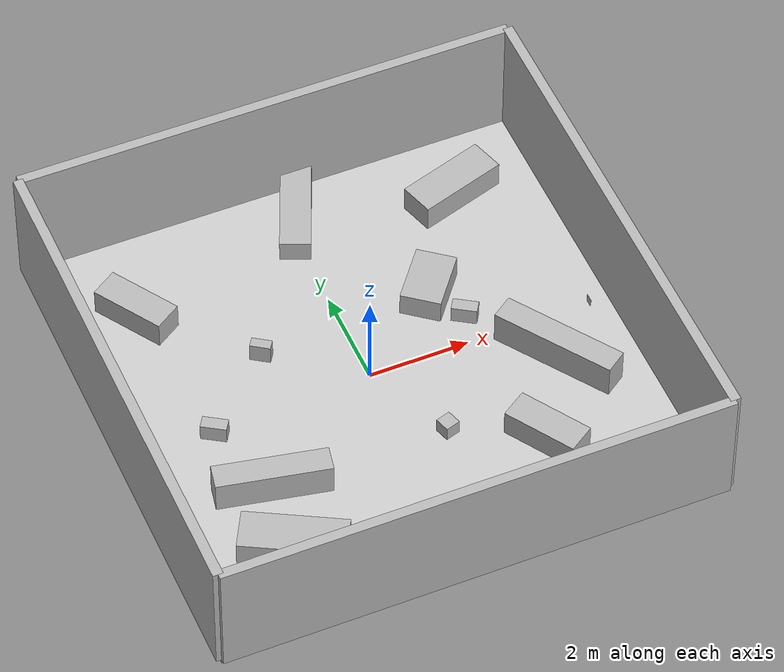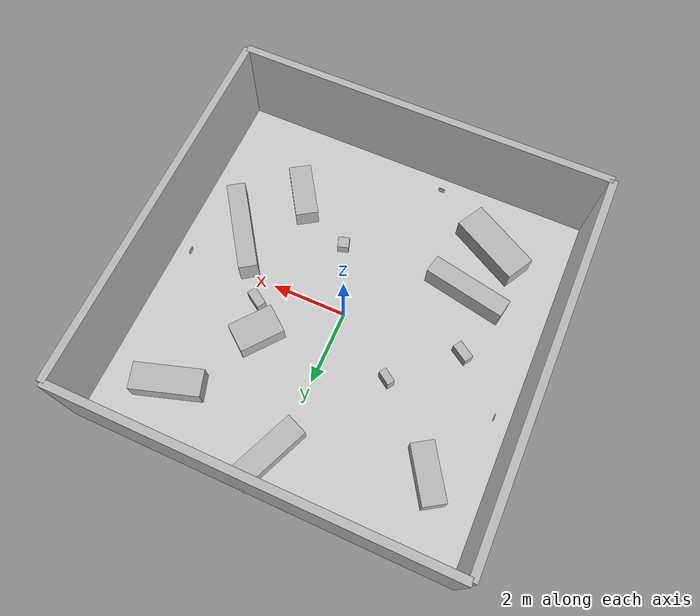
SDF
<sdf version='1.10'>
  <world name='small_office'>

    <physics name='physics' type='ignored'>
      <max_step_size>0.008</max_step_size>
      <real_time_factor>1</real_time_factor>
      <real_time_update_rate>200</real_time_update_rate>
    </physics>

    <plugin name='gz::sim::systems::Physics' filename='gz-sim-physics-system'/>
    <plugin name='gz::sim::systems::UserCommands' filename='gz-sim-user-commands-system'/>
    <plugin name='gz::sim::systems::SceneBroadcaster' filename='gz-sim-scene-broadcaster-system'/>

    <plugin name='gz::sim::systems::Sensors' filename='gz-sim-sensors-system'>
      <render_engine>ogre2</render_engine>
    </plugin>

    <plugin name='gz::sim::systems::Contact' filename='gz-sim-contact-system'/>
    <plugin name='gz::sim::systems::Imu' filename='gz-sim-imu-system'/>

    <gravity>0 0 -9.8</gravity>

    <scene>
      <ambient>0.4 0.4 0.4 1</ambient>
      <background>0.7 0.7 0.7 1</background>
      <shadows>true</shadows>
    </scene>

    <!-- FLOOR -->

    <model name='floor'>
      <static>true</static>

      <link name='link'>

        <collision name='collision'>
          <geometry>
            <box>
              <size>10 10 0.1</size>
            </box>
          </geometry>
        </collision>

        <visual name='visual'>
          <geometry>
            <box>
              <size>10 10 0.1</size>
            </box>
          </geometry>

          <material>
            <ambient>0.7 0.7 0.7 1</ambient>
            <diffuse>0.8 0.8 0.8 1</diffuse>
          </material>
        </visual>

      </link>

      <pose>0 0 -0.05 0 0 0</pose>
    </model>

    <!-- WALLS -->

    <model name='north_wall'>
      <static>true</static>

      <link name='link'>

        <collision name='collision'>
          <geometry>
            <box>
              <size>10 0.2 2.5</size>
            </box>
          </geometry>
        </collision>

        <visual name='visual'>
          <geometry>
            <box>
              <size>10 0.2 2.5</size>
            </box>
          </geometry>
        </visual>

      </link>

      <pose>0 5 1.25 0 0 0</pose>
    </model>

    <model name='south_wall'>
      <static>true</static>

      <link name='link'>

        <collision name='collision'>
          <geometry>
            <box>
              <size>10 0.2 2.5</size>
            </box>
          </geometry>
        </collision>

        <visual name='visual'>
          <geometry>
            <box>
              <size>10 0.2 2.5</size>
            </box>
          </geometry>
        </visual>

      </link>

      <pose>0 -5 1.25 0 0 0</pose>
    </model>

    <model name='east_wall'>
      <static>true</static>

      <link name='link'>

        <collision name='collision'>
          <geometry>
            <box>
              <size>0.2 10 2.5</size>
            </box>
          </geometry>
        </collision>

        <visual name='visual'>
          <geometry>
            <box>
              <size>0.2 10 2.5</size>
            </box>
          </geometry>
        </visual>

      </link>

      <pose>5 0 1.25 0 0 0</pose>
    </model>

    <model name='west_wall'>
      <static>true</static>

      <link name='link'>

        <collision name='collision'>
          <geometry>
            <box>
              <size>0.2 10 2.5</size>
            </box>
          </geometry>
        </collision>

        <visual name='visual'>
          <geometry>
            <box>
              <size>0.2 10 2.5</size>
            </box>
          </geometry>
        </visual>

      </link>

      <pose>-5 0 1.25 0 0 0</pose>
    </model>

    <!-- APRIL TAG -->

    <model name='charge_dock'>
      <pose>-4.5 1.0 0.08 -1.57 0 -1.57</pose>

      <include>
        <uri>model://Apriltag36_11_00000</uri>
      </include>
    </model>

    <model name='check_dock'>
      <pose>4.5 0.0 0.08 -1.57 0 1.57</pose>

      <include>
        <uri>model://Apriltag36_11_00001</uri>
      </include>
    </model>

    <model name='load_dock'>
      <pose>-1.0 -4.5 0.08 -1.57 0 0.0</pose>

      <include>
        <uri>model://Apriltag36_11_00002</uri>
      </include>
    </model>

    <!-- MAIN BOXES -->

    <model name='box'>
      <static>true</static>

      <pose>3.2 3.5 0.275 0 0 0.3</pose>

      <link name='box_link'>

        <collision name='collision'>
          <geometry>
            <box>
              <size>1.8 0.7 0.55</size>
            </box>
          </geometry>
        </collision>

        <visual name='visual'>
          <geometry>
            <box>
              <size>1.8 0.7 0.55</size>
            </box>
          </geometry>
        </visual>

      </link>
    </model>

    <model name='box_0'>
      <static>true</static>

      <pose>0.2 4.1 0.225 0 0 -0.4</pose>

      <link name='box_link'>

        <collision name='collision'>
          <geometry>
            <box>
              <size>0.6 2.0 0.45</size>
            </box>
          </geometry>
        </collision>

        <visual name='visual'>
          <geometry>
            <box>
              <size>0.6 2.0 0.45</size>
            </box>
          </geometry>
        </visual>

      </link>
    </model>

    <model name='box_1'>
      <static>true</static>

      <pose>1.8 1.4 0.25 0 0 0.9</pose>

      <link name='box_link'>

        <collision name='collision'>
          <geometry>
            <box>
              <size>1.2 0.8 0.50</size>
            </box>
          </geometry>
        </collision>

        <visual name='visual'>
          <geometry>
            <box>
              <size>1.2 0.8 0.50</size>
            </box>
          </geometry>
        </visual>

      </link>
    </model>

    <model name='box_2'>
      <static>true</static>

      <pose>-2.7 -1.8 0.325 0 0 -0.2</pose>

      <link name='box_link'>

        <collision name='collision'>
          <geometry>
            <box>
              <size>2.2 0.5 0.65</size>
            </box>
          </geometry>
        </collision>

        <visual name='visual'>
          <geometry>
            <box>
              <size>2.2 0.5 0.65</size>
            </box>
          </geometry>
        </visual>

      </link>
    </model>

    <model name='box_4'>
      <static>true</static>

      <pose>2.4 -2.7 0.275 0 0 -1.0</pose>

      <link name='box_link'>

        <collision name='collision'>
          <geometry>
            <box>
              <size>1.5 0.6 0.55</size>
            </box>
          </geometry>
        </collision>

        <visual name='visual'>
          <geometry>
            <box>
              <size>1.5 0.6 0.55</size>
            </box>
          </geometry>
        </visual>

      </link>
    </model>

    <model name='box_7'>
      <static>true</static>

      <pose>3.4 -1.0 0.35 0 0 0.6</pose>

      <link name='box_link'>

        <collision name='collision'>
          <geometry>
            <box>
              <size>0.5 2.5 0.70</size>
            </box>
          </geometry>
        </collision>

        <visual name='visual'>
          <geometry>
            <box>
              <size>0.5 2.5 0.70</size>
            </box>
          </geometry>
        </visual>

      </link>
    </model>

    <model name='box_9'>
      <static>true</static>

      <pose>-2.9 -3.3 0.30 0 0 -0.5</pose>

      <link name='box_link'>

        <collision name='collision'>
          <geometry>
            <box>
              <size>2.0 0.8 0.60</size>
            </box>
          </geometry>
        </collision>

        <visual name='visual'>
          <geometry>
            <box>
              <size>2.0 0.8 0.60</size>
            </box>
          </geometry>
        </visual>

      </link>
    </model>

    <model name='box_10'>
      <static>true</static>

      <pose>-3.5 3.0 0.275 0 0 -1.0</pose>

      <link name='box_link'>

        <collision name='collision'>
          <geometry>
            <box>
              <size>1.5 0.6 0.55</size>
            </box>
          </geometry>
        </collision>

        <visual name='visual'>
          <geometry>
            <box>
              <size>1.5 0.6 0.55</size>
            </box>
          </geometry>
        </visual>

      </link>
    </model>

    <!-- SMALL FEATURE BOXES -->

    <model name='feature_box_a'>
      <static>true</static>

      <pose>0.8 -1.8 0.15 0 0 0.3</pose>

      <link name='link'>

        <collision name='collision'>
          <geometry>
            <box>
              <size>0.3 0.3 0.3</size>
            </box>
          </geometry>
        </collision>

        <visual name='visual'>
          <geometry>
            <box>
              <size>0.3 0.3 0.3</size>
            </box>
          </geometry>
        </visual>

      </link>
    </model>

    <model name='feature_box_b'>
      <static>true</static>

      <pose>-1.7 1.2 0.2 0 0 -0.6</pose>

      <link name='link'>

        <collision name='collision'>
          <geometry>
            <box>
              <size>0.4 0.2 0.4</size>
            </box>
          </geometry>
        </collision>

        <visual name='visual'>
          <geometry>
            <box>
              <size>0.4 0.2 0.4</size>
            </box>
          </geometry>
        </visual>

      </link>
    </model>

    <model name='feature_box_c'>
      <static>true</static>

      <pose>2.2 0.6 0.175 0 0 1.0</pose>

      <link name='link'>

        <collision name='collision'>
          <geometry>
            <box>
              <size>0.25 0.5 0.35</size>
            </box>
          </geometry>
        </collision>

        <visual name='visual'>
          <geometry>
            <box>
              <size>0.25 0.5 0.35</size>
            </box>
          </geometry>
        </visual>

      </link>
    </model>

    <model name='feature_box_d'>
      <static>true</static>

      <pose>-3.2 -0.2 0.175 0 0 1.0</pose>

      <link name='link'>

        <collision name='collision'>
          <geometry>
            <box>
              <size>0.25 0.5 0.35</size>
            </box>
          </geometry>
        </collision>

        <visual name='visual'>
          <geometry>
            <box>
              <size>0.25 0.5 0.35</size>
            </box>
          </geometry>
        </visual>

      </link>
    </model>

    <!-- LIGHT -->

    <light name='sun_light' type='directional'>
      <pose>0 0 10 0 0 0</pose>

      <cast_shadows>true</cast_shadows>

      <direction>-0.5 0.1 -0.9</direction>

      <diffuse>1 1 1 1</diffuse>

      <specular>0.2 0.2 0.2 1</specular>
    </light>

  </world>
</sdf>

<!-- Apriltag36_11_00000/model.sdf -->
<sdf version='1.6'>
  <model name='Apriltag36_11_00000'>
    <link name='main'>
      <pose frame=''>0 0 0 0 0 0</pose>
      <visual name="visual">
        <geometry>
          <mesh>
            <uri>model://Apriltag36_11_00000/meshes/tag36_11_00000.dae</uri>
            <scale>0.08 0.08 0.05</scale>
          </mesh>
        </geometry>
      </visual>
     </link>
    <static>1</static>
  </model>
</sdf>

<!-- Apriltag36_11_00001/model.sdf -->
<sdf version='1.6'>
  <model name='Apriltag36_11_00001'>
    <link name='main'>
      <pose frame=''>0 0 0 0 0 0</pose>
      <visual name="visual">
        <geometry>
          <mesh>
            <uri>model://Apriltag36_11_00001/meshes/tag36_11_00001.dae</uri>
            <scale>0.08 0.08 0.05</scale>
          </mesh>
        </geometry>
      </visual>
     </link>
    <static>1</static>
  </model>
</sdf>

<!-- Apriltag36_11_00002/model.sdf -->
<sdf version='1.6'>
  <model name='Apriltag36_11_00002'>
    <link name='main'>
      <pose frame=''>0 0 0 0 0 0</pose>
      <visual name="visual">
        <geometry>
          <mesh>
            <uri>model://Apriltag36_11_00002/meshes/tag36_11_00002.dae</uri>
            <scale>0.08 0.08 0.05</scale>
          </mesh>
        </geometry>
      </visual>
     </link>
    <static>1</static>
  </model>
</sdf>
